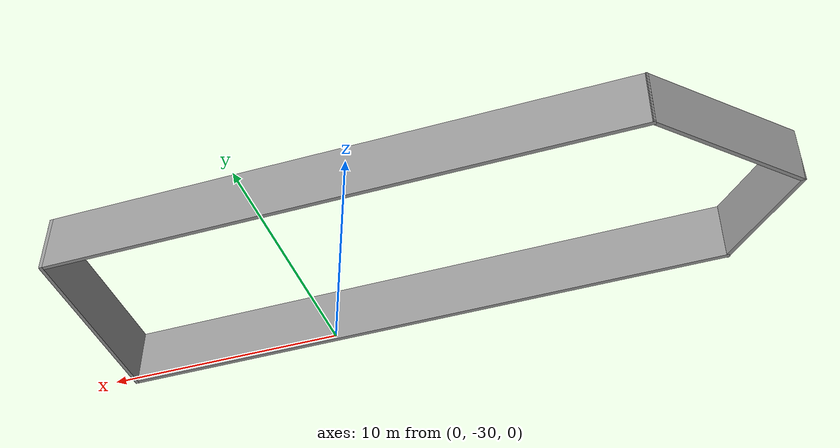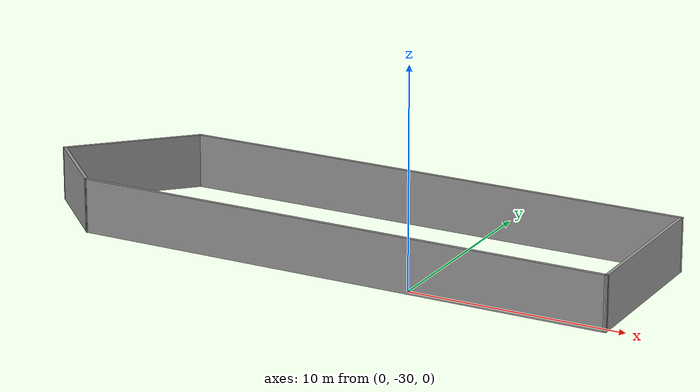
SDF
<?xml version='1.0'?>
<sdf version='1.6'>
  <model name='PentaBuilding'>
    <pose frame=''>-5.00389 -26.3256 0 0 -0 0</pose>
    <link name='Wall_19'>
      <collision name='Wall_19_Collision'>
        <geometry>
          <box>
            <size>8 0.15 2.5</size>
          </box>
        </geometry>
        <pose frame=''>0 0 1.25 0 -0 0</pose>
      </collision>
      <visual name='Wall_19_Visual'>
        <pose frame=''>0 0 1.25 0 -0 0</pose>
        <geometry>
          <box>
            <size>8 0.15 2.5</size>
          </box>
        </geometry>
        <material>
          <script>
            <uri>file://media/materials/scripts/gazebo.material</uri>
            <name>Gazebo/Grey</name>
          </script>
          <ambient>1 1 1 1</ambient>
        </material>
        <meta>
          <layer>0</layer>
        </meta>
      </visual>
      <pose frame=''>14.1854 -0.015375 0 0 -0 1.5708</pose>
    </link>
    <link name='Wall_20'>
      <collision name='Wall_20_Collision'>
        <geometry>
          <box>
            <size>24 0.15 2.5</size>
          </box>
        </geometry>
        <pose frame=''>0 0 1.25 0 -0 0</pose>
      </collision>
      <visual name='Wall_20_Visual'>
        <pose frame=''>0 0 1.25 0 -0 0</pose>
        <geometry>
          <box>
            <size>24 0.15 2.5</size>
          </box>
        </geometry>
        <material>
          <script>
            <uri>file://media/materials/scripts/gazebo.material</uri>
            <name>Gazebo/Grey</name>
          </script>
          <ambient>1 1 1 1</ambient>
        </material>
        <meta>
          <layer>0</layer>
        </meta>
      </visual>
      <pose frame=''>2.26044 3.90963 0 0 -0 3.14159</pose>
    </link>
    <link name='Wall_21'>
      <collision name='Wall_21_Collision'>
        <geometry>
          <box>
            <size>6.5 0.15 2.5</size>
          </box>
        </geometry>
        <pose frame=''>0 0 1.25 0 -0 0</pose>
      </collision>
      <visual name='Wall_21_Visual'>
        <pose frame=''>0 0 1.25 0 -0 0</pose>
        <geometry>
          <box>
            <size>6.5 0.15 2.5</size>
          </box>
        </geometry>
        <material>
          <script>
            <uri>file://media/materials/scripts/gazebo.material</uri>
            <name>Gazebo/Grey</name>
          </script>
          <ambient>1 1 1 1</ambient>
        </material>
        <meta>
          <layer>0</layer>
        </meta>
      </visual>
      <pose frame=''>-11.9096 1.66456 0 0 -0 -2.35619</pose>
    </link>
    <link name='Wall_22'>
      <collision name='Wall_22_Collision'>
        <geometry>
          <box>
            <size>4.75 0.15 2.5</size>
          </box>
        </geometry>
        <pose frame=''>0 0 1.25 0 -0 0</pose>
      </collision>
      <visual name='Wall_22_Visual'>
        <pose frame=''>0 0 1.25 0 -0 0</pose>
        <geometry>
          <box>
            <size>4.75 0.15 2.5</size>
          </box>
        </geometry>
        <material>
          <script>
            <uri>file://media/materials/scripts/gazebo.material</uri>
            <name>Gazebo/Grey</name>
          </script>
          <ambient>1 1 1 1</ambient>
        </material>
        <meta>
          <layer>0</layer>
        </meta>
      </visual>
      <pose frame=''>-12.5283 -2.20685 0 0 -0 -0.785398</pose>
    </link>
    <link name='Wall_23'>
      <collision name='Wall_23_Collision'>
        <geometry>
          <box>
            <size>25.2377 0.15 2.5</size>
          </box>
        </geometry>
        <pose frame=''>0 0 1.25 0 -0 0</pose>
      </collision>
      <visual name='Wall_23_Visual'>
        <pose frame=''>0 0 1.25 0 -0 0</pose>
        <geometry>
          <box>
            <size>25.2377 0.15 2.5</size>
          </box>
        </geometry>
        <material>
          <script>
            <uri>file://media/materials/scripts/gazebo.material</uri>
            <name>Gazebo/Grey</name>
          </script>
          <ambient>1 1 1 1</ambient>
        </material>
        <meta>
          <layer>0</layer>
        </meta>
      </visual>
      <pose frame=''>1.64172 -3.88678 0 0 -0 -0.004272</pose>
    </link>
    <static>1</static>
  </model>
</sdf>
